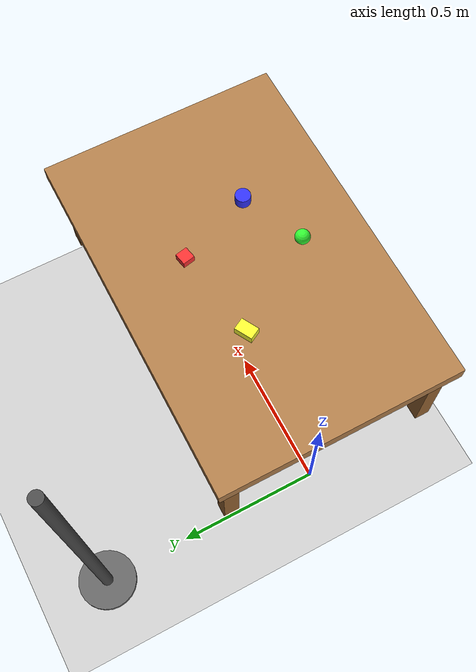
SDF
<?xml version="1.0" ?>
<sdf version="1.6">
  <world name="table_scene">

    <!-- Physics settings -->
    <physics type="ode">
      <max_step_size>0.001</max_step_size>
      <real_time_factor>1</real_time_factor>
      <real_time_update_rate>1000</real_time_update_rate>
    </physics>

    <plugin name="gazebo_ros_state" filename="libgazebo_ros_state.so">
      <ros>
        <namespace>/</namespace>
      </ros>
      <update_rate>50.0</update_rate>
    </plugin>

    <!-- Lighting -->
    <include>
      <uri>model://sun</uri>
    </include>

    <!-- Additional light for better visibility -->
    <light name="point_light" type="point">
      <pose>0.5 0.5 2.0 0 0 0</pose>
      <diffuse>0.8 0.8 0.8 1</diffuse>
      <specular>0.2 0.2 0.2 1</specular>
      <attenuation>
        <range>10</range>
        <constant>0.5</constant>
        <linear>0.01</linear>
        <quadratic>0.001</quadratic>
      </attenuation>
      <cast_shadows>true</cast_shadows>
    </light>

    <!-- Ground Plane -->
    <include>
      <uri>model://ground_plane</uri>
    </include>

    <!-- Table -->
    <model name="table">
      <static>true</static>
      <pose>0.5 0 0.375 0 0 0</pose>
      <link name="table_link">
        <!-- Table top -->
        <collision name="table_top_collision">
          <pose>0 0 0.375 0 0 0</pose>
          <geometry>
            <box>
              <size>1.2 0.8 0.05</size>
            </box>
          </geometry>
          <surface>
            <friction>
              <ode>
                <mu>1.0</mu>
                <mu2>1.0</mu2>
              </ode>
            </friction>
          </surface>
        </collision>
        <visual name="table_top_visual">
          <pose>0 0 0.375 0 0 0</pose>
          <geometry>
            <box>
              <size>1.2 0.8 0.05</size>
            </box>
          </geometry>
          <material>
            <ambient>0.6 0.4 0.2 1</ambient>
            <diffuse>0.7 0.5 0.3 1</diffuse>
            <specular>0.1 0.1 0.1 1</specular>
          </material>
        </visual>

        <!-- Table legs -->
        <collision name="leg1_collision">
          <pose>0.55 0.35 0.175 0 0 0</pose>
          <geometry>
            <box><size>0.05 0.05 0.35</size></box>
          </geometry>
        </collision>
        <visual name="leg1_visual">
          <pose>0.55 0.35 0.175 0 0 0</pose>
          <geometry>
            <box><size>0.05 0.05 0.35</size></box>
          </geometry>
          <material>
            <ambient>0.5 0.3 0.1 1</ambient>
            <diffuse>0.6 0.4 0.2 1</diffuse>
          </material>
        </visual>

        <collision name="leg2_collision">
          <pose>0.55 -0.35 0.175 0 0 0</pose>
          <geometry>
            <box><size>0.05 0.05 0.35</size></box>
          </geometry>
        </collision>
        <visual name="leg2_visual">
          <pose>0.55 -0.35 0.175 0 0 0</pose>
          <geometry>
            <box><size>0.05 0.05 0.35</size></box>
          </geometry>
          <material>
            <ambient>0.5 0.3 0.1 1</ambient>
            <diffuse>0.6 0.4 0.2 1</diffuse>
          </material>
        </visual>

        <collision name="leg3_collision">
          <pose>-0.55 0.35 0.175 0 0 0</pose>
          <geometry>
            <box><size>0.05 0.05 0.35</size></box>
          </geometry>
        </collision>
        <visual name="leg3_visual">
          <pose>-0.55 0.35 0.175 0 0 0</pose>
          <geometry>
            <box><size>0.05 0.05 0.35</size></box>
          </geometry>
          <material>
            <ambient>0.5 0.3 0.1 1</ambient>
            <diffuse>0.6 0.4 0.2 1</diffuse>
          </material>
        </visual>

        <collision name="leg4_collision">
          <pose>-0.55 -0.35 0.175 0 0 0</pose>
          <geometry>
            <box><size>0.05 0.05 0.35</size></box>
          </geometry>
        </collision>
        <visual name="leg4_visual">
          <pose>-0.55 -0.35 0.175 0 0 0</pose>
          <geometry>
            <box><size>0.05 0.05 0.35</size></box>
          </geometry>
          <material>
            <ambient>0.5 0.3 0.1 1</ambient>
            <diffuse>0.6 0.4 0.2 1</diffuse>
          </material>
        </visual>
      </link>
    </model>

    <!-- Objects on the table -->

    <!-- Red Cube -->
    <model name="red_cube">
      <pose>0.6 0.15 0.78 0 0 0.2</pose>
      <link name="cube_link">
        <inertial>
          <mass>0.1</mass>
          <inertia>
            <ixx>0.0001</ixx>
            <iyy>0.0001</iyy>
            <izz>0.0001</izz>
          </inertia>
        </inertial>
        <collision name="cube_collision">
          <geometry>
            <box><size>0.04 0.04 0.04</size></box>
          </geometry>
          <surface>
            <friction>
              <ode>
                <mu>1.0</mu>
                <mu2>1.0</mu2>
              </ode>
            </friction>
          </surface>
        </collision>
        <visual name="cube_visual">
          <geometry>
            <box><size>0.04 0.04 0.04</size></box>
          </geometry>
          <material>
            <ambient>0.8 0.1 0.1 1</ambient>
            <diffuse>1.0 0.2 0.2 1</diffuse>
            <specular>0.3 0.3 0.3 1</specular>
          </material>
        </visual>
      </link>
    </model>

    <!-- Blue Cylinder -->
    <model name="blue_cylinder">
      <pose>0.7 -0.1 0.78 0 0 0</pose>
      <link name="cylinder_link">
        <inertial>
          <mass>0.15</mass>
          <inertia>
            <ixx>0.0001</ixx>
            <iyy>0.0001</iyy>
            <izz>0.0001</izz>
          </inertia>
        </inertial>
        <collision name="cylinder_collision">
          <geometry>
            <cylinder>
              <radius>0.025</radius>
              <length>0.06</length>
            </cylinder>
          </geometry>
          <surface>
            <friction>
              <ode>
                <mu>1.0</mu>
                <mu2>1.0</mu2>
              </ode>
            </friction>
          </surface>
        </collision>
        <visual name="cylinder_visual">
          <geometry>
            <cylinder>
              <radius>0.025</radius>
              <length>0.06</length>
            </cylinder>
          </geometry>
          <material>
            <ambient>0.1 0.1 0.8 1</ambient>
            <diffuse>0.2 0.2 1.0 1</diffuse>
            <specular>0.3 0.3 0.3 1</specular>
          </material>
        </visual>
      </link>
    </model>

    <!-- Green Sphere -->
    <model name="green_sphere">
      <pose>0.5 -0.2 0.78 0 0 0</pose>
      <link name="sphere_link">
        <inertial>
          <mass>0.05</mass>
          <inertia>
            <ixx>0.00001</ixx>
            <iyy>0.00001</iyy>
            <izz>0.00001</izz>
          </inertia>
        </inertial>
        <collision name="sphere_collision">
          <geometry>
            <sphere><radius>0.025</radius></sphere>
          </geometry>
          <surface>
            <friction>
              <ode>
                <mu>1.0</mu>
                <mu2>1.0</mu2>
              </ode>
            </friction>
          </surface>
        </collision>
        <visual name="sphere_visual">
          <geometry>
            <sphere><radius>0.025</radius></sphere>
          </geometry>
          <material>
            <ambient>0.1 0.8 0.1 1</ambient>
            <diffuse>0.2 1.0 0.2 1</diffuse>
            <specular>0.3 0.3 0.3 1</specular>
          </material>
        </visual>
      </link>
    </model>

    <!-- Yellow Box (larger object) -->
    <model name="yellow_box">
      <pose>0.3 0.1 0.79 0 0 0.5</pose>
      <link name="box_link">
        <inertial>
          <mass>0.2</mass>
          <inertia>
            <ixx>0.0002</ixx>
            <iyy>0.0002</iyy>
            <izz>0.0002</izz>
          </inertia>
        </inertial>
        <collision name="box_collision">
          <geometry>
            <box><size>0.06 0.04 0.03</size></box>
          </geometry>
          <surface>
            <friction>
              <ode>
                <mu>1.0</mu>
                <mu2>1.0</mu2>
              </ode>
            </friction>
          </surface>
        </collision>
        <visual name="box_visual">
          <geometry>
            <box><size>0.06 0.04 0.03</size></box>
          </geometry>
          <material>
            <ambient>0.8 0.8 0.1 1</ambient>
            <diffuse>1.0 1.0 0.2 1</diffuse>
            <specular>0.3 0.3 0.3 1</specular>
          </material>
        </visual>
      </link>
    </model>

    <!-- Camera stand for D435 (external camera support) -->
    <model name="camera_stand">
      <static>true</static>
      <pose>0.0 0.8 0 0 0 0</pose>
      <link name="stand_link">
        <!-- Vertical pole -->
        <collision name="pole_collision">
          <pose>0 0 0.6 0 0 0</pose>
          <geometry>
            <cylinder>
              <radius>0.02</radius>
              <length>1.2</length>
            </cylinder>
          </geometry>
        </collision>
        <visual name="pole_visual">
          <pose>0 0 0.6 0 0 0</pose>
          <geometry>
            <cylinder>
              <radius>0.02</radius>
              <length>1.2</length>
            </cylinder>
          </geometry>
          <material>
            <ambient>0.2 0.2 0.2 1</ambient>
            <diffuse>0.3 0.3 0.3 1</diffuse>
          </material>
        </visual>

        <!-- Base -->
        <collision name="base_collision">
          <pose>0 0 0.01 0 0 0</pose>
          <geometry>
            <cylinder>
              <radius>0.1</radius>
              <length>0.02</length>
            </cylinder>
          </geometry>
        </collision>
        <visual name="base_visual">
          <pose>0 0 0.01 0 0 0</pose>
          <geometry>
            <cylinder>
              <radius>0.1</radius>
              <length>0.02</length>
            </cylinder>
          </geometry>
          <material>
            <ambient>0.3 0.3 0.3 1</ambient>
            <diffuse>0.4 0.4 0.4 1</diffuse>
          </material>
        </visual>
      </link>
    </model>

  </world>
</sdf>
